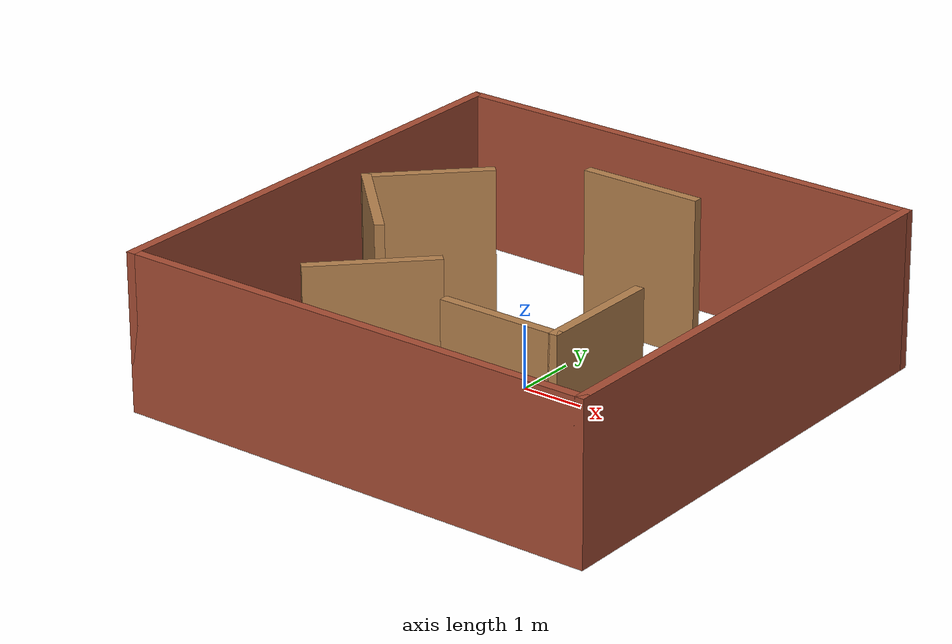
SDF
<?xml version='1.0'?>
<sdf version='1.7'>
  <model name='turtlebot3_drl_stage11'>
    <pose>0.017372 -0.031206 0 0 -0 0</pose>
    <link name='Wall_10'>
      <collision name='Wall_10_Collision'>
        <geometry>
          <box>
            <size>8 0.15 2.5</size>
          </box>
        </geometry>
        <pose>0 0 1.25 0 -0 0</pose>
      </collision>
      <visual name='Wall_10_Visual'>
        <pose>0 0 1.25 0 -0 0</pose>
        <geometry>
          <box>
            <size>8 0.15 2.5</size>
          </box>
        </geometry>
        <material>
          <script>
            <uri>file://media/materials/scripts/gazebo.material</uri>
            <name>Gazebo/Bricks</name>
          </script>
          <ambient>1 1 1 1</ambient>
        </material>
        <meta>
          <layer>0</layer>
        </meta>
      </visual>
      <pose>-3.925 0 0 0 -0 1.5708</pose>
    </link>
    <link name='Wall_12'>
      <collision name='Wall_12_Collision'>
        <geometry>
          <box>
            <size>8 0.15 2.5</size>
          </box>
        </geometry>
        <pose>0 0 1.25 0 -0 0</pose>
      </collision>
      <visual name='Wall_12_Visual'>
        <pose>0 0 1.25 0 -0 0</pose>
        <geometry>
          <box>
            <size>8 0.15 2.5</size>
          </box>
        </geometry>
        <material>
          <script>
            <uri>file://media/materials/scripts/gazebo.material</uri>
            <name>Gazebo/Bricks</name>
          </script>
          <ambient>1 1 1 1</ambient>
        </material>
        <meta>
          <layer>0</layer>
        </meta>
      </visual>
      <pose>0 -3.925 0 0 -0 0</pose>
    </link>
    <link name='Wall_13'>
      <collision name='Wall_13_Collision'>
        <geometry>
          <box>
            <size>8 0.15 2.5</size>
          </box>
        </geometry>
        <pose>0 0 1.25 0 -0 0</pose>
      </collision>
      <visual name='Wall_13_Visual'>
        <pose>0 0 1.25 0 -0 0</pose>
        <geometry>
          <box>
            <size>8 0.15 2.5</size>
          </box>
        </geometry>
        <material>
          <script>
            <uri>file://media/materials/scripts/gazebo.material</uri>
            <name>Gazebo/Bricks</name>
          </script>
          <ambient>1 1 1 1</ambient>
        </material>
        <meta>
          <layer>0</layer>
        </meta>
      </visual>
      <pose>3.925 0 0 0 -0 1.5708</pose>
    </link>
    <link name='Wall_14'>
      <collision name='Wall_14_Collision'>
        <geometry>
          <box>
            <size>8 0.15 2.5</size>
          </box>
        </geometry>
        <pose>0 0 1.25 0 -0 0</pose>
      </collision>
      <visual name='Wall_14_Visual'>
        <pose>0 0 1.25 0 -0 0</pose>
        <geometry>
          <box>
            <size>8 0.15 2.5</size>
          </box>
        </geometry>
        <material>
          <script>
            <uri>file://media/materials/scripts/gazebo.material</uri>
            <name>Gazebo/Bricks</name>
          </script>
          <ambient>1 1 1 1</ambient>
        </material>
        <meta>
          <layer>0</layer>
        </meta>
      </visual>
      <pose>0 3.925 0 0 -0 3.14159</pose>
    </link>
    <link name='Wall_17'>
      <collision name='Wall_17_Collision'>
        <geometry>
          <box>
            <size>2 0.15 2.5</size>
          </box>
        </geometry>
        <pose>0 0 1.25 0 -0 0</pose>
      </collision>
      <visual name='Wall_17_Visual'>
        <pose>0 0 1.25 0 -0 0</pose>
        <geometry>
          <box>
            <size>2 0.15 2.5</size>
          </box>
        </geometry>
        <material>
          <script>
            <uri>file://media/materials/scripts/gazebo.material</uri>
            <name>Gazebo/Wood</name>
          </script>
          <ambient>1 1 1 1</ambient>
        </material>
        <meta>
          <layer>0</layer>
        </meta>
      </visual>
      <pose>0.30478 2.4528 0 0 -0 0</pose>
    </link>
    <link name='Wall_20'>
      <collision name='Wall_20_Collision'>
        <geometry>
          <box>
            <size>2 0.15 2.5</size>
          </box>
        </geometry>
        <pose>0 0 1.25 0 -0 0</pose>
      </collision>
      <visual name='Wall_20_Visual'>
        <pose>0 0 1.25 0 -0 0</pose>
        <geometry>
          <box>
            <size>2 0.15 2.5</size>
          </box>
        </geometry>
        <material>
          <script>
            <uri>file://media/materials/scripts/gazebo.material</uri>
            <name>Gazebo/Wood</name>
          </script>
          <ambient>1 1 1 1</ambient>
        </material>
        <meta>
          <layer>0</layer>
        </meta>
      </visual>
      <pose>-1.03489 -2.16471 0 0 -0 -2.35619</pose>
    </link>
    <link name='Wall_30'>
      <collision name='Wall_30_Collision'>
        <geometry>
          <box>
            <size>2 0.15 2.5</size>
          </box>
        </geometry>
        <pose>0 0 1.25 0 -0 0</pose>
      </collision>
      <visual name='Wall_30_Visual'>
        <pose>0 0 1.25 0 -0 0</pose>
        <geometry>
          <box>
            <size>2 0.15 2.5</size>
          </box>
        </geometry>
        <material>
          <script>
            <uri>file://media/materials/scripts/gazebo.material</uri>
            <name>Gazebo/Wood</name>
          </script>
          <ambient>1 1 1 1</ambient>
        </material>
        <meta>
          <layer>0</layer>
        </meta>
      </visual>
      <pose>-2.49316 -0.382495 0 0 -0 -0.785398</pose>
    </link>
    <link name='Wall_35'>
      <collision name='Wall_35_Collision'>
        <geometry>
          <box>
            <size>2 0.15 2.5</size>
          </box>
        </geometry>
        <pose>0 0 1.25 0 -0 0</pose>
      </collision>
      <visual name='Wall_35_Visual'>
        <pose>0 0 1.25 0 -0 0</pose>
        <geometry>
          <box>
            <size>2 0.15 2.5</size>
          </box>
        </geometry>
        <material>
          <script>
            <uri>file://media/materials/scripts/gazebo.material</uri>
            <name>Gazebo/Wood</name>
          </script>
          <ambient>1 1 1 1</ambient>
        </material>
        <meta>
          <layer>0</layer>
        </meta>
      </visual>
      <pose>1.5404 -2.54804 0 0 -0 3.14159</pose>
    </link>
    <link name='Wall_38'>
      <collision name='Wall_38_Collision'>
        <geometry>
          <box>
            <size>2 0.15 2.5</size>
          </box>
        </geometry>
        <pose>0 0 1.25 0 -0 0</pose>
      </collision>
      <visual name='Wall_38_Visual'>
        <pose>0 0 1.25 0 -0 0</pose>
        <geometry>
          <box>
            <size>2 0.15 2.5</size>
          </box>
        </geometry>
        <material>
          <script>
            <uri>file://media/materials/scripts/gazebo.material</uri>
            <name>Gazebo/Wood</name>
          </script>
          <ambient>1 1 1 1</ambient>
        </material>
        <meta>
          <layer>0</layer>
        </meta>
      </visual>
      <pose>-2.49316 0.925652 0 0 -0 0.785398</pose>
    </link>
    <link name='Wall_40'>
      <collision name='Wall_40_Collision'>
        <geometry>
          <box>
            <size>2 0.15 2.5</size>
          </box>
        </geometry>
        <pose>0 0 1.25 0 -0 0</pose>
      </collision>
      <visual name='Wall_40_Visual'>
        <pose>0 0 1.25 0 -0 0</pose>
        <geometry>
          <box>
            <size>2 0.15 2.5</size>
          </box>
        </geometry>
        <material>
          <script>
            <uri>file://media/materials/scripts/gazebo.material</uri>
            <name>Gazebo/Wood</name>
          </script>
          <ambient>1 1 1 1</ambient>
        </material>
        <meta>
          <layer>0</layer>
        </meta>
      </visual>
      <pose>2.4654 -1.62304 0 0 -0 1.5708</pose>
    </link>
    <static>1</static>
  </model>
</sdf>
